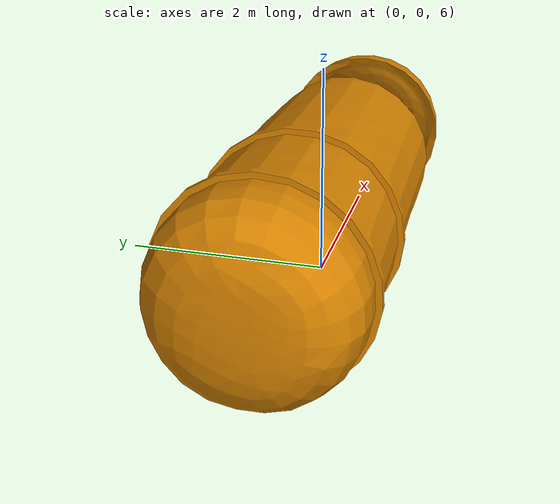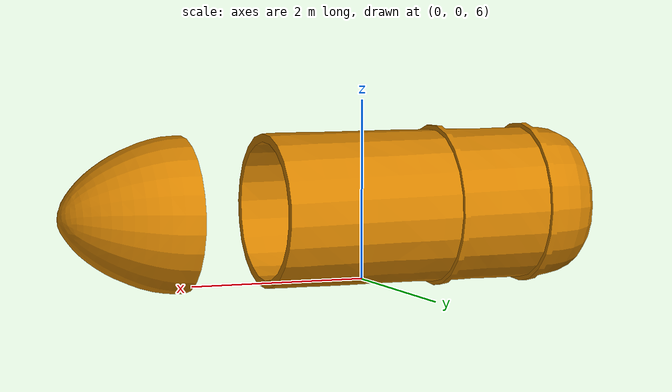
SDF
<?xml version="1.0" ?>
<sdf version="1.8">
  <model name="nacelle">
    <static>true</static>
    <pose>0 0 1 1.5708 0 0</pose>
    <link name="link">
      <visual name="visual">
        <geometry>
          <mesh>
            <uri>model://Nacelle/meshes/TidalTurbine_Nacelle.dae</uri>
          </mesh>
        </geometry>
      </visual>
      <collision name="collision">
        <geometry>
          <mesh>
            <uri>model://Nacelle/meshes/TidalTurbine_Nacelle.dae</uri>
          </mesh>
        </geometry>
      </collision>
    </link>
  </model>
</sdf>
